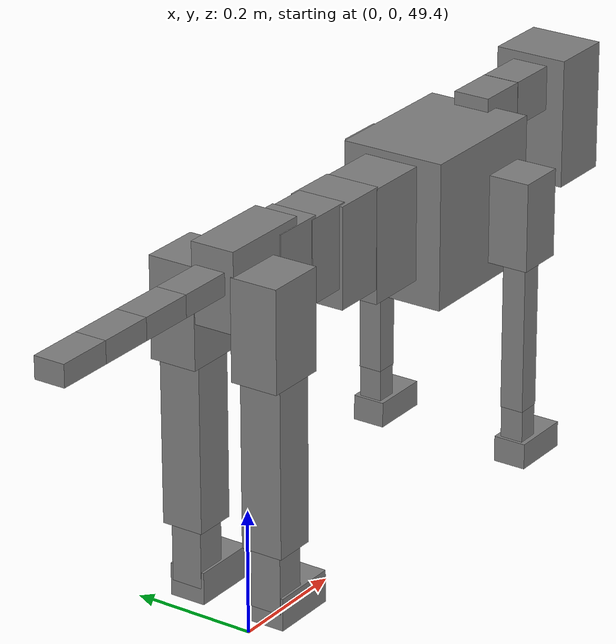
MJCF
<mujoco model="dog">

    <default>
        <joint armature="0.02" stiffness="1" damping="0.2" limited="true"/>
        <geom condim="3" friction="1 0.05 0.05" margin="0.01"/>
        <motor ctrllimited="true" ctrlrange="-1.0 1.0" forcelimited="true" gear="50"/>
    </default>

    <compiler inertiafromgeom="true" angle="radian"/>

    <option timestep="0.016" iterations="50" tolerance="1e-10" solver="Newton" jacobian="dense" cone="pyramidal"/>

    <size nconmax="20000" njmax="60000" nstack="5000000"/>
    <visual>
        <map force="0.1" zfar="30"/>
        <rgba haze="0.15 0.25 0.35 1"/>
        <quality shadowsize="2048"/>
        <global offwidth="800" offheight="800"/>
    </visual>

    <asset>
        <texture type="skybox" builtin="gradient" rgb1="0.3 0.5 0.7" rgb2="0 0 0" width="512" height="512"/>
        <texture name="texplane" type="2d" builtin="checker" rgb1=".2 .3 .4" rgb2=".1 0.15 0.2" width="512" height="512"
                 mark="cross" markrgb=".8 .8 .8"/>
        <texture name="texgeom" type="cube" builtin="flat" mark="cross" width="127" height="1278" rgb1="0.8 0.6 0.4"
                 rgb2="0.8 0.6 0.4" markrgb="1 1 1" random="0.01"/>

        <material name="matplane" reflectance="0.3" texture="texplane" texrepeat="1 1" texuniform="true"/>
        <material name="matgeom" texture="texgeom" texuniform="true" rgba="0.8 0.6 .4 1"/>
    </asset>

    <worldbody>
        <geom name="floor" pos="0 0 0" size="0 0 .25" type="plane" material="matplane" condim="3"/>

        <light directional="false" diffuse=".2 .2 .2" specular="0 0 0" pos="0 0 5" dir="0 0 -1" castshadow="false"/>
        <light mode="targetbodycom" target="torso" directional="false" diffuse=".8 .8 .8" specular="0.3 0.3 0.3"
               pos="0 0 4.0" dir="0 0 -1"/>

        <body name="root" pos="0 0 50">
            <freejoint name="root_1"/>
            <geom type="box" pos="0 0 -0.02" size="0.0774  0.0358  0.063" density="2030"/>

            <body name="spine1" pos="0.054 0 0">
                <joint name="spine1_y" axis="0 1 0" range="0 0.7" limited="true"/>
                <geom type="box" pos="0.02375 0 -0.03" size="0.04375  0.0375  0.05985" density="2030"/>

                <body name="spine2" pos="0.0612 0 0">
                    <joint name="spine2_y" axis="0 1 0" range="-0.15 0.15" limited="true"/>
                    <geom type="box" pos="0.03555  0  -0.04" size="0.04055  0.039  0.06615" density="2030"/>

                    <body name="spine3" pos="0.0730 0 0">
                        <joint name="spine3_y" axis="0 1 0" range="-0.15 0.15" limited="true"/>
                        <geom type="box" pos="0.03555  0  -0.057" size="0.04555  0.0445  0.081" density="2030"/>

                        <body name="spine4" pos="0.0780 0 0">
                            <joint name="spine4_y" axis="0 1 0" range="-0.15 0.15" limited="true"/>
                            <geom type="box" pos="0.05265  0  -0.07" size="0.05265  0.045  0.09135" density="2030"/>

                            <body name="torso" pos="0.1082 0 0">
                                <joint name="torso_y" axis="0 1 0" range="-0.15 0.15" limited="true"/>
                                <geom type="box" pos="0.11925  0  -0.085" size="0.11925  0.085  0.11745"
                                      density="2030"/>

                                <body name="neck1" pos="0.2160  0   0.0180">
                                    <joint name="neck1_y" axis="0 1 0" range="-1.2  -1" limited="true"/>
                                    <geom type="box" pos="0.0423  0  0" size="0.0423  0.03  0.036" density="2325"/>

                                    <body name="neck2" pos="0.0853  0  0">
                                        <joint name="neck2_y" axis="0 1 0" range="0.1  0" limited="true"/>
                                        <geom type="box" pos="0.0423  0  0" size="0.0423  0.03  0.036" density="2325"/>

                                        <body name="head" pos="0.0853  0  0">
                                            <joint name="head_y" axis="0 1 0" range="-0.3  -0.2" limited="true"/>
                                            <geom type="box" pos="0.0531  0  -0.055" size="0.0531  0.06  0.1044"
                                                  density="4030"/>

                                        </body>
                                    </body>
                                </body>

                                <body name="front_shoulder" pos="0.156  0   -0.0480">
                                    <joint name="front_shoulder_y" axis="0 1 0" range="-1 1.5" limited="true"/>
                                    <geom type="box" pos="0 0.13 -0.0439" size="0.0391  0.0335  0.0706" density="1158"/>
                                    <geom type="box" pos="0 -0.13 -0.0439" size="0.0391  0.0335  0.0706"
                                          density="1158"/>

                                    <body name="front_elbow" pos="0  0  -0.0878">
                                        <joint name="front_elbow_y" axis="0 1 0" range="-2 0" limited="true"/>
                                        <geom type="box" pos="0 0.13 -0.1354" size="0.0189  0.0193  0.1354"
                                              density="1081"/>
                                        <geom type="box" pos="0 -0.13 -0.1354" size="0.0189  0.0193  0.1354"
                                              density="1081"/>

                                        <body name="front_wrist" pos="0  0  -0.2707">
                                            <joint name="front_wrist_y" axis="0 1 0" range="-0.2 0" limited="true"/>
                                            <geom type="box" pos="0 0.13 -0.0332" size="0.0171  0.0190  0.0464"
                                                  density="1664"/>
                                            <geom type="box" pos="0 -0.13 -0.0332" size="0.0171  0.0190  0.0464"
                                                  density="1664"/>

                                            <body name="front_finger_end" pos="0  0  -0.0664">
                                                <joint name="front_finger_y" axis="0 1 0" range="-0.4 1"
                                                       limited="true"/>
                                                <geom type="box" pos="0.0268  0.13  -0.0058"
                                                      size="0.0491  0.0268  0.0208" density="1515"/>
                                                <geom type="box" pos="0.0268  -0.13  -0.0058"
                                                      size="0.0491  0.0268  0.0208" density="1515"/>

                                            </body>

                                        </body>
                                    </body>
                                </body>

                            </body>
                        </body>
                    </body>
                </body>
            </body>

            <body name="back_hip" pos="-0.03 0 -0.018">
                <joint name="back_hip_y" axis="0 1 0" range="-1.5 0.3" limited="true"/>
                <geom type="box" pos="0 0.07 -0.0574" size="0.0491  0.0385  0.0802" density="1154"/>
                <geom type="box" pos="0 -0.07 -0.0574" size="0.0491  0.0385  0.0802" density="1154"/>

                <body name="back_knee" pos="0  0  -0.1147">
                    <joint name="back_knee_y" axis="0 1 0" range="0 2.8" limited="true"/>
                    <geom type="box" pos="0 0.07 -0.1367" size="0.0344  0.0339  0.1523" density="1227"/>
                    <geom type="box" pos="0 -0.07 -0.1367" size="0.0344  0.0339  0.1523" density="1227"/>

                    <body name="back_ankle" pos="0  0  -0.2735">
                        <joint name="back_ankle_y" axis="0 1 0" range="-2.2 0" limited="true"/>
                        <geom type="box" pos="0 0.07 -0.0497" size="0.0254  0.0254  0.0609" density="1284"/>
                        <geom type="box" pos="0 -0.07 -0.0497" size="0.0254  0.0254  0.0609" density="1284"/>

                        <body name="back_toe_end" pos="0  0  -0.0994">
                            <joint name="back_toe_y" axis="0 1 0" range="-0.4 1" limited="true"/>
                            <geom type="box" pos="0.0295  0.07  -0.0109" size="0.0541  0.0295  0.0259" density="1515"/>
                            <geom type="box" pos="0.0295  -0.07  -0.0109" size="0.0541  0.0295  0.0259" density="1515"/>

                        </body>
                    </body>
                </body>
            </body>

            <body name="tail1" pos="-0.074 0 -0.006">
                <joint name="tail1_y" axis="0 1 0" range="-0.2 0.2" limited="true"/>
                <geom type="box" pos="-0.0536  0  0" size="0.045  0.025  0.0175" density="1587"/>

                <body name="tail2" pos="-0.09 0 0">
                    <joint name="tail2_y" axis="0 1 0" range="-0.2 0.2" limited="true"/>
                    <geom type="box" pos="-0.0536  0  0" size="0.045  0.025  0.0175" density="1587"/>

                    <body name="tail3" pos="-0.09 0 0">
                        <joint name="tail3_y" axis="0 1 0" range="-0.2 0.2" limited="true"/>
                        <geom type="box" pos="-0.0536  0  0" size="0.045  0.025  0.0175" density="1587"/>

                        <body name="tail4" pos="-0.09 0 0">
                            <joint name="tail4_y" axis="0 1 0" range="-0.2 0.2" limited="true"/>
                            <geom type="box" pos="-0.0536  0  0" size="0.045  0.025  0.0175" density="1587"/>

                        </body>
                    </body>
                </body>
            </body>
        </body>
    </worldbody>

    <actuator>
        <motor joint="spine1_y" forcerange="-150 150     "/>
        <motor joint="spine2_y" forcerange="-150 150     "/>
        <motor joint="spine3_y" forcerange="-150 150     "/>
        <motor joint="spine4_y" forcerange="-150 150     "/>
        <motor joint="torso_y" forcerange="-150 150     "/>
        <motor joint="neck1_y" forcerange="-100 100       "/>
        <motor joint="neck2_y" forcerange="-100 100       "/>
        <motor joint="head_y" forcerange="-150 150       "/>
        <motor joint="front_shoulder_y" forcerange="-161.21 161.79"/>
        <motor joint="front_elbow_y" forcerange="-122.70 117.50"/>
        <motor joint="front_wrist_y" forcerange="-77.83 74.25"/>
        <motor joint="front_finger_y" forcerange="-30.21 72.55"/>
        <motor joint="back_hip_y" forcerange="-327.21 386.61"/>
        <motor joint="back_knee_y" forcerange="-395.70 297.04"/>
        <motor joint="back_angle_y" forcerange="-185.49 120.60"/>
        <motor joint="back_toe_y" forcerange="-70.29 85.75"/>
        <motor joint="tail1_y" forcerange="-50 50     "/>
        <motor joint="tail2_y" forcerange="-50 50     "/>
        <motor joint="tail3_y" forcerange="-50 50     "/>
        <motor joint="tail4_y" forcerange="-50 50     "/>
    </actuator>
</mujoco>
